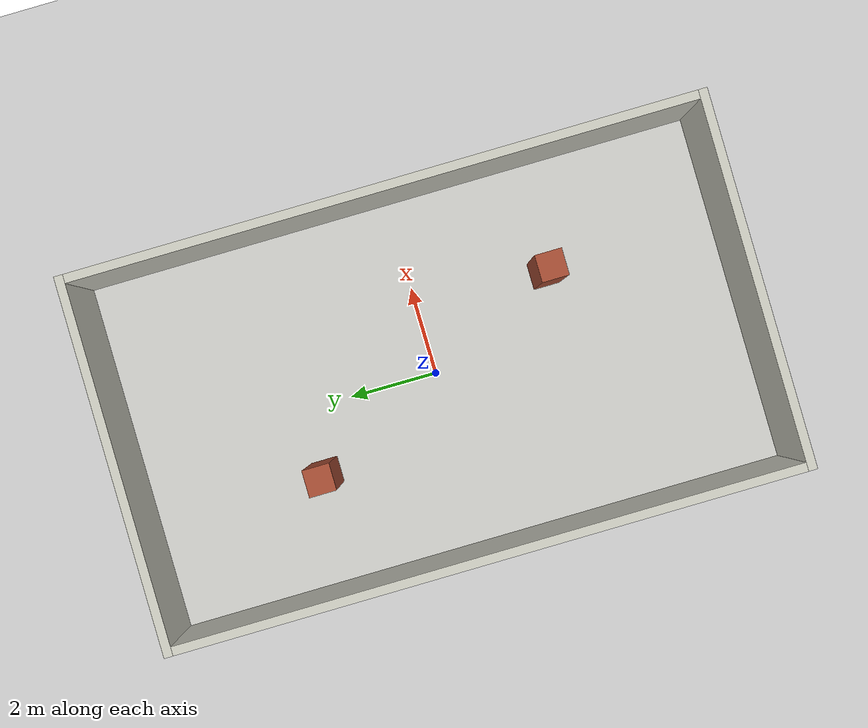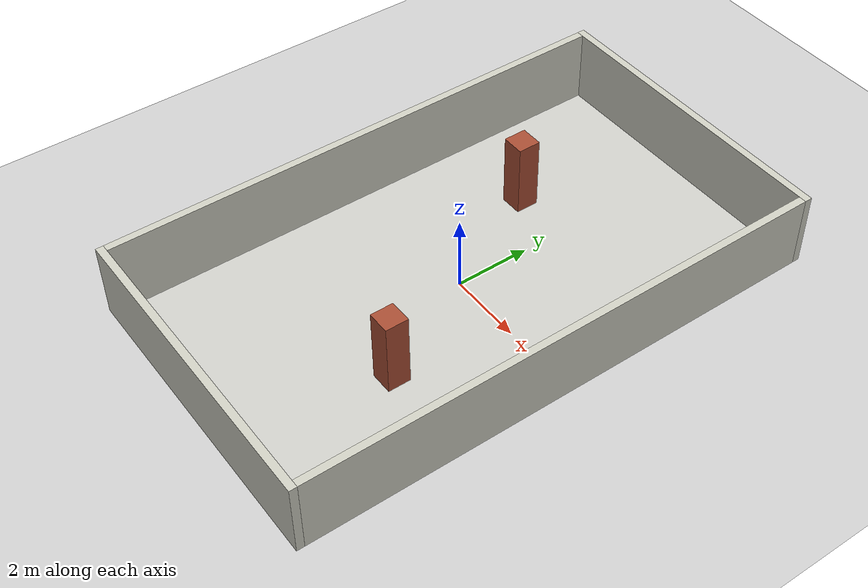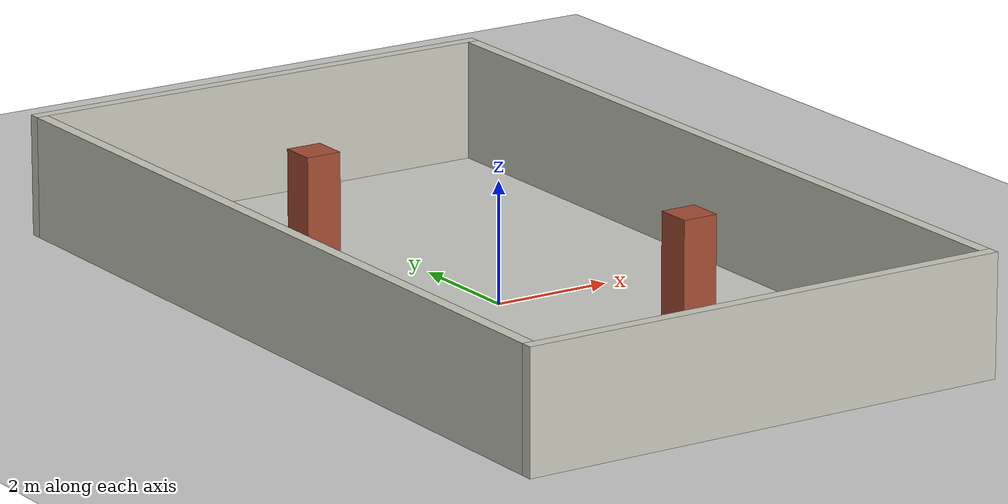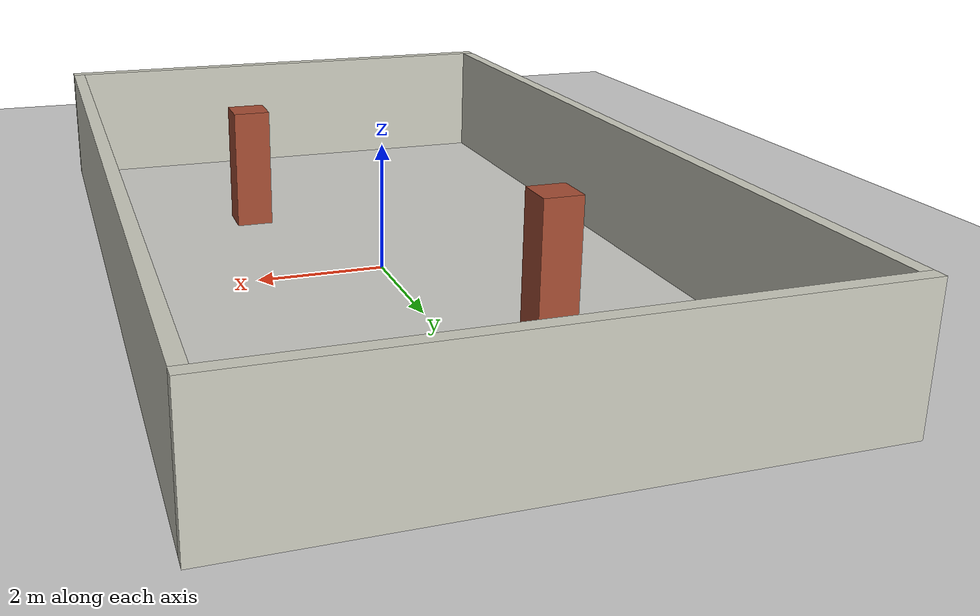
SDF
<?xml version="1.0" ?>
<sdf version="1.5">
  <world name="default">
    <include><uri>model://sun</uri></include>
    <include><uri>model://ground_plane</uri></include>

    <plugin name='ActorPosesPlugin' filename='libActorPosesPlugin.so'/>

    <model name="room_8x14_with_pillars">
      <static>true</static>

      <link name="floor">
        <pose>0 0 0.001 0 0 0</pose>
        <collision name="collision"><geometry><box><size>8 14 0.01</size></box></geometry></collision>
        <visual name="visual">
          <geometry><box><size>8 14 0.01</size></box></geometry>
          <material><script><uri>file://media/materials/scripts/gazebo.material</uri><name>Gazebo/CeilingTiled</name></script></material>
        </visual>
      </link>

      <link name="wall_north">
        <pose>0 7.1 1 0 0 0</pose>
        <collision name="collision"><geometry><box><size>8.4 0.2 2</size></box></geometry></collision>
        <visual name="visual"><geometry><box><size>8.4 0.2 2</size></box></geometry><material><script><uri>file://media/materials/scripts/gazebo.material</uri><name>Gazebo/PaintedWall</name></script></material></visual>
      </link>
      <link name="wall_south">
        <pose>0 -7.1 1 0 0 0</pose>
        <collision name="collision"><geometry><box><size>8.4 0.2 2</size></box></geometry></collision>
        <visual name="visual"><geometry><box><size>8.4 0.2 2</size></box></geometry><material><script><uri>file://media/materials/scripts/gazebo.material</uri><name>Gazebo/PaintedWall</name></script></material></visual>
      </link>
      <link name="wall_east">
        <pose>4.1 0 1 0 0 0</pose>
        <collision name="collision"><geometry><box><size>0.2 14 2</size></box></geometry></collision>
        <visual name="visual"><geometry><box><size>0.2 14 2</size></box></geometry><material><script><uri>file://media/materials/scripts/gazebo.material</uri><name>Gazebo/PaintedWall</name></script></material></visual>
      </link>
      <link name="wall_west">
        <pose>-4.1 0 1 0 0 0</pose>
        <collision name="collision"><geometry><box><size>0.2 14 2</size></box></geometry></collision>
        <visual name="visual"><geometry><box><size>0.2 14 2</size></box></geometry><material><script><uri>file://media/materials/scripts/gazebo.material</uri><name>Gazebo/PaintedWall</name></script></material></visual>
      </link>

      <link name="pillar_1">
        <pose>-1.5 3 1 0 0 0</pose>
        <collision name="collision"><geometry><box><size>0.6 0.6 2</size></box></geometry></collision>
        <visual name="visual"><geometry><box><size>0.6 0.6 2</size></box></geometry><material><script><uri>file://media/materials/scripts/gazebo.material</uri><name>Gazebo/Bricks</name></script></material></visual>
      </link>

      <link name="pillar_2">
        <pose>1.5 -3 1 0 0 0</pose>
        <collision name="collision"><geometry><box><size>0.6 0.6 2</size></box></geometry></collision>
        <visual name="visual"><geometry><box><size>0.6 0.6 2</size></box></geometry><material><script><uri>file://media/materials/scripts/gazebo.material</uri><name>Gazebo/Bricks</name></script></material></visual>
      </link>

    </model>
  </world>
</sdf>
